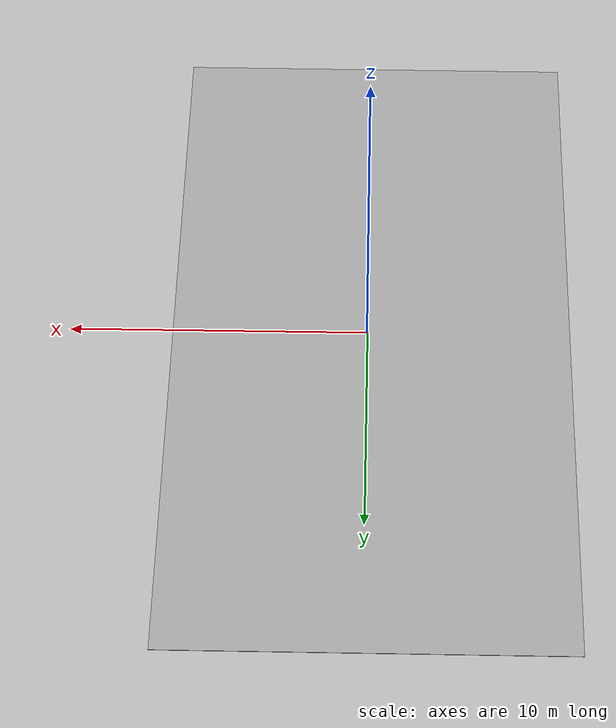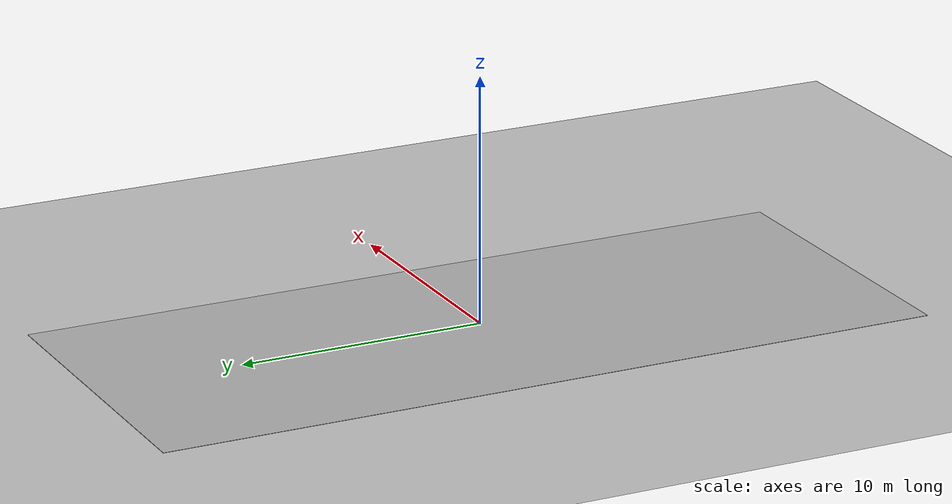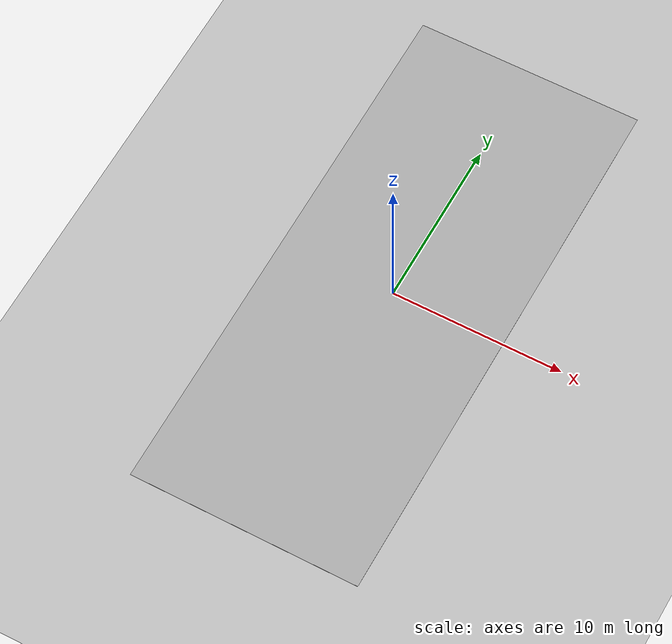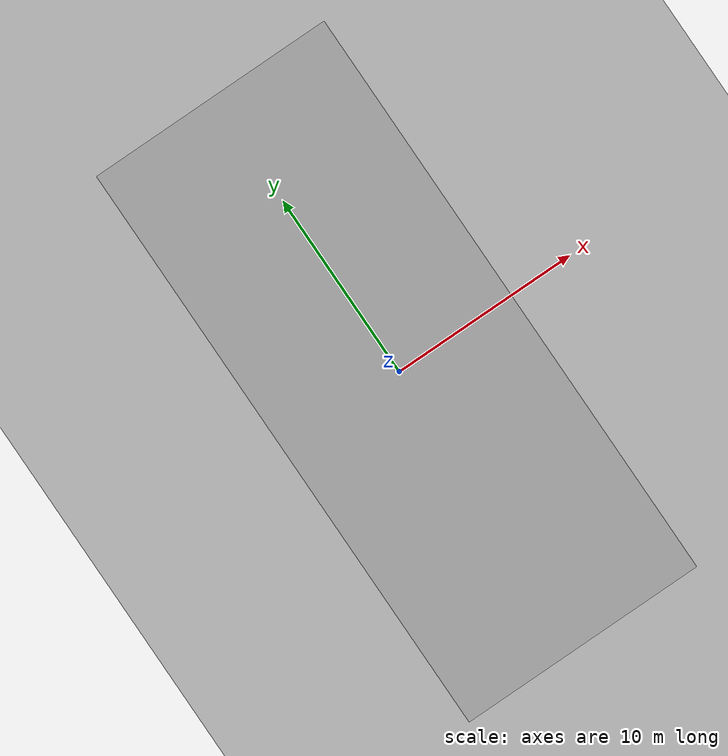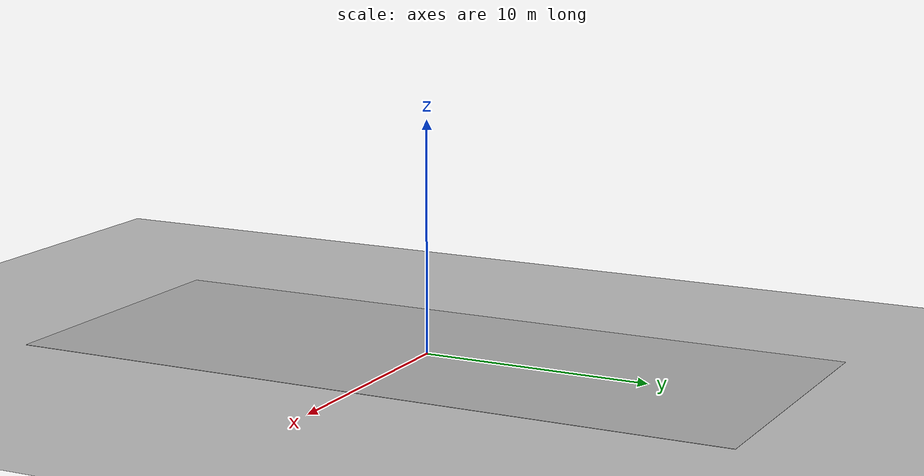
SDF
<sdf version="1.7">
 <world name="default">
  <light name="sun" type="directional">
   <pose>0 0 10 0 -0 0</pose>
   <diffuse>0.8 0.8 0.8 1</diffuse>
   <specular>0.2 0.2 0.2 1</specular>
   <attenuation>
    <range>1000</range>
    <constant>0.9</constant>
    <linear>0.01</linear>
    <quadratic>0.001</quadratic>
   </attenuation>
   <direction>-0.5 0.1 -0.9</direction>
   <spot><inner_angle>0</inner_angle><outer_angle>0</outer_angle><falloff>0</falloff></spot>
  </light>
  <model name="ground_plane">
   <static>1</static>
   <link name="link">
    <collision name="collision">
     <geometry><plane><normal>0 0 1</normal><size>100 100</size></plane></geometry>
     <surface>
      <contact><collide_bitmask>65535</collide_bitmask></contact>
      <friction><ode><mu>100</mu><mu2>50</mu2></ode></friction>
     </surface>
    </collision>
    <visual name="visual">
     <cast_shadows>0</cast_shadows>
     <geometry><plane><normal>0 0 1</normal><size>100 100</size></plane></geometry>
     <material>
      <script><uri>file://media/materials/scripts/gazebo.material</uri><name>Gazebo/Grey</name></script>
     </material>
    </visual>
   </link>
  </model>
  <gravity>0 0 -9.8</gravity>
  <magnetic_field>6e-06 2.3e-05 -4.2e-05</magnetic_field>
  <atmosphere type="adiabatic"/>
  <physics type="ode">
   <max_step_size>0.001</max_step_size>
   <real_time_factor>1</real_time_factor>
   <real_time_update_rate>1000</real_time_update_rate>
  </physics>
  <scene><ambient>0.4 0.4 0.4 1</ambient><background>0.7 0.7 0.7 1</background><shadows>1</shadows></scene>
  <spherical_coordinates>
   <surface_model>EARTH_WGS84</surface_model>
   <latitude_deg>0</latitude_deg>
   <longitude_deg>0</longitude_deg>
   <elevation>0</elevation>
   <heading_deg>0</heading_deg>
  </spherical_coordinates>
  <model name="conde_world">
   <static>1</static>
   <link name="link_ground">
    <collision name="collision">
     <geometry><plane><normal>0 0 1</normal><size>13.3632 32.0256</size></plane></geometry>
     <surface><friction><ode><mu>100</mu><mu2>50</mu2></ode></friction></surface>
    </collision>
    <visual name="visual_ground">
     <cast_shadows>0</cast_shadows>
     <pose>0 0 0.005 0 -0 0</pose>
     <geometry><plane><normal>0 0 1</normal><size>13.3632 32.0256</size></plane></geometry>
     <material>
      <script>
       <uri>model://conde_world/materials/scripts</uri>
       <uri>model://conde_world/materials/textures</uri>
       <name>Floor/Image</name>
      </script>
     </material>
    </visual>
    <velocity_decay><linear>0</linear><angular>0</angular></velocity_decay>
   </link>
   <pose>-0.120523 0.081292 0 0 -0 0</pose>
  </model>
 </world>
</sdf>
